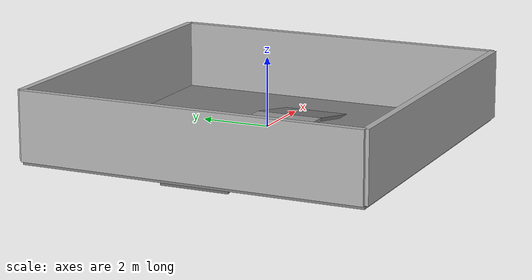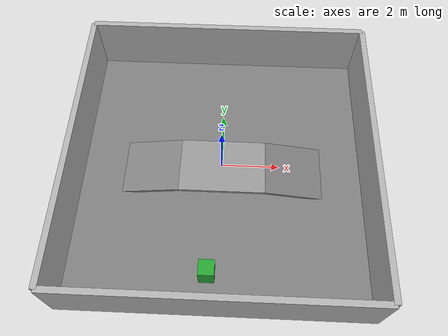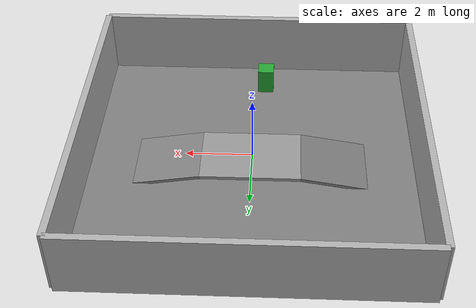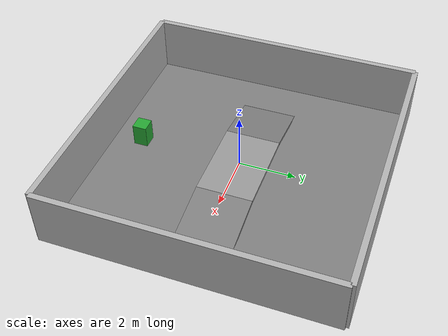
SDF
<?xml version="1.0" ?>
<sdf version="1.6">
  <world name="uneven_terrain_extended">
    <!-- Use a Gazebo-supported physics engine (ode). -->
    <physics name="1ms" type="ode">
      <max_step_size>0.001</max_step_size>
      <real_time_factor>1.0</real_time_factor>
    </physics>

    <plugin filename="libignition-gazebo-physics-system.so" name="gz::sim::systems::Physics">
    </plugin>
    <plugin filename="libignition-gazebo-sensors-system.so" name="ignition::gazebo::systems::Sensors">
      <render_engine>ogre2</render_engine>
    </plugin>
    <plugin filename="libignition-gazebo-scene-broadcaster-system.so" name="ignition::gazebo::systems::SceneBroadcaster">
    </plugin>
    <plugin filename="libignition-gazebo-user-commands-system.so" name="gz::sim::systems::UserCommands">
    </plugin>
    <plugin filename="libignition-gazebo-imu-system.so" name="ignition::gazebo::systems::Imu">
    </plugin>

    <light type="directional" name="sun">
      <cast_shadows>true</cast_shadows>
      <pose>0 0 10 0 0 0</pose>
      <diffuse>1 1 1 1</diffuse>
      <specular>0.5 0.5 0.5 1</specular>
      <attenuation>
        <range>1000</range>
        <constant>0.9</constant>
        <linear>0.01</linear>
        <quadratic>0.001</quadratic>
      </attenuation>
      <direction>-0.5 0.1 -0.9</direction>
    </light>

    <scene>
      <grid>false</grid>
    </scene>

    <!-- Terrain Models -->

    <model name="ground_mesh_model">
      <static>true</static>
      <link name="link">
        <collision name="collision">
          <geometry>
            <box>
              <size>10 10 0.1</size>
            </box>
          </geometry>
        </collision>
        <visual name="visual">
          <geometry>
            <box>
              <size>10 10 0.1</size>
            </box>
          </geometry>
          <material>
            <ambient>0.5 0.5 0.5 1</ambient>
            <diffuse>0.5 0.5 0.5 1</diffuse>
          </material>
        </visual>
        <pose>0 0 0 0 -0 0</pose>
        <enable_wind>false</enable_wind>
      </link>
      <pose>0 0 -0.390000 0 0 0</pose>
    </model>

    <model name="wall_north">
      <static>true</static>
      <pose>0 5 0.66 0 -0 0</pose>
      <link name="link">
        <collision name="collision">
          <geometry>
            <box>
              <size>10 0.2 2</size>
            </box>
          </geometry>
        </collision>
        <visual name="visual">
          <geometry>
            <box>
              <size>10 0.2 2</size>
            </box>
          </geometry>
          <material>
            <ambient>0.7 0.7 0.7 1</ambient>
          </material>
        </visual>
        <pose>0 0 0 0 -0 0</pose>
        <enable_wind>false</enable_wind>
      </link>
      <self_collide>false</self_collide>
    </model>

    <model name="wall_south">
      <static>true</static>
      <pose>0 -5 0.66 0 -0 0</pose>
      <link name="link">
        <collision name="collision">
          <geometry>
            <box>
              <size>10 0.2 2</size>
            </box>
          </geometry>
        </collision>
        <visual name="visual">
          <geometry>
            <box>
              <size>10 0.2 2</size>
            </box>
          </geometry>
          <material>
            <ambient>0.7 0.7 0.7 1</ambient>
          </material>
        </visual>
        <pose>0 0 0 0 -0 0</pose>
        <enable_wind>false</enable_wind>
      </link>
      <self_collide>false</self_collide>
    </model>

    <model name="wall_east">
      <static>true</static>
      <pose>5 0 0.66 0 -0 0</pose>
      <link name="link">
        <collision name="collision">
          <geometry>
            <box>
              <size>0.2 10 2</size>
            </box>
          </geometry>
        </collision>
        <visual name="visual">
          <geometry>
            <box>
              <size>0.2 10 2</size>
            </box>
          </geometry>
          <material>
            <ambient>0.7 0.7 0.7 1</ambient>
          </material>
        </visual>
        <pose>0 0 0 0 -0 0</pose>
        <enable_wind>false</enable_wind>
      </link>
      <self_collide>false</self_collide>
    </model>

    <model name="wall_west">
      <static>true</static>
      <pose>-5 0 0.66 0 -0 0</pose>
      <link name="link">
        <collision name="collision">
          <geometry>
            <box>
              <size>0.2 10 2</size>
            </box>
          </geometry>
        </collision>
        <visual name="visual">
          <geometry>
            <box>
              <size>0.2 10 2</size>
            </box>
          </geometry>
          <material>
            <ambient>0.7 0.7 0.7 1</ambient>
          </material>
        </visual>
        <pose>0 0 0 0 -0 0</pose>
        <enable_wind>false</enable_wind>
      </link>
      <self_collide>false</self_collide>
    </model>

    <model name="ramp_1">
      <static>true</static>
      <pose>-3.03158 0 -0.32 0 -0.17 0</pose>
      <link name="link">
        <collision name="collision">
          <geometry>
            <box>
              <size>3.2 2 0.1</size>
            </box>
          </geometry>
        </collision>
        <visual name="visual">
          <geometry>
            <box>
              <size>3.2 2 0.1</size>
            </box>
          </geometry>
          <material>
            <ambient>0.5 0.5 0.5 1</ambient>
          </material>
        </visual>
        <pose>0 0 0 0 -0 0</pose>
        <enable_wind>false</enable_wind>
      </link>
      <self_collide>false</self_collide>
    </model>

    <model name="platform_1">
      <static>true</static>
      <pose>0.036876 0 -0.05 0 -0 0</pose>
      <link name="link">
        <collision name="collision">
          <geometry>
            <box>
              <size>3 2 0.1</size>
            </box>
          </geometry>
        </collision>
        <visual name="visual">
          <geometry>
            <box>
              <size>3 2 0.1</size>
            </box>
          </geometry>
          <material>
            <ambient>0.6 0.6 0.6 1</ambient>
          </material>
        </visual>
        <pose>0 0 0 0 -0 0</pose>
        <enable_wind>false</enable_wind>
      </link>
      <self_collide>false</self_collide>
    </model>

    <model name="ramp_2">
      <static>true</static>
      <pose>3.10534 0 -0.32 0 0.17 0</pose>
      <link name="link">
        <collision name="collision">
          <geometry>
            <box>
              <size>3.2 2 0.1</size>
            </box>
          </geometry>
        </collision>
        <visual name="visual">
          <geometry>
            <box>
              <size>3.2 2 0.1</size>
            </box>
          </geometry>
          <material>
            <ambient>0.5 0.5 0.5 1</ambient>
          </material>
        </visual>
        <pose>0 0 0 0 -0 0</pose>
        <enable_wind>false</enable_wind>
      </link>
      <self_collide>false</self_collide>
    </model>

    <!-- Obstacles -->
    <model name="obstacle_0_box">
      <pose>-0.316374 -3.82169 0.066707 0 0 0</pose>
      <static>true</static>
      <link name="link">
        <collision name="collision">
          <geometry>
            <box>
              <size>0.509259 0.50741 0.813414</size>
            </box>
          </geometry>
        </collision>
        <visual name="visual">
          <geometry>
            <box>
              <size>0.509259 0.50741 0.813414</size>
            </box>
          </geometry>
          <material>
            <script>
              <uri>file://media/materials/scripts/gazebo.material</uri>
              <name>Gazebo/Green</name>
            </script>
          </material>
        </visual>
        <pose>0 0 0 0 -0 0</pose>
        <enable_wind>false</enable_wind>
      </link>
      <self_collide>false</self_collide>
    </model>

  </world>
</sdf>
